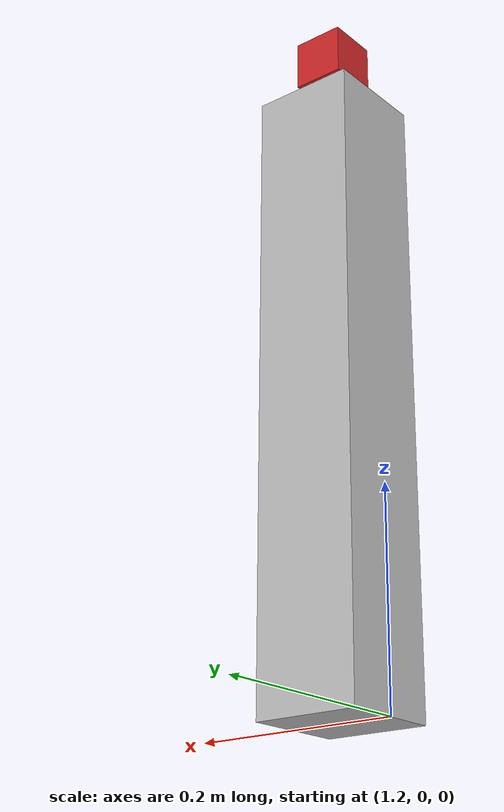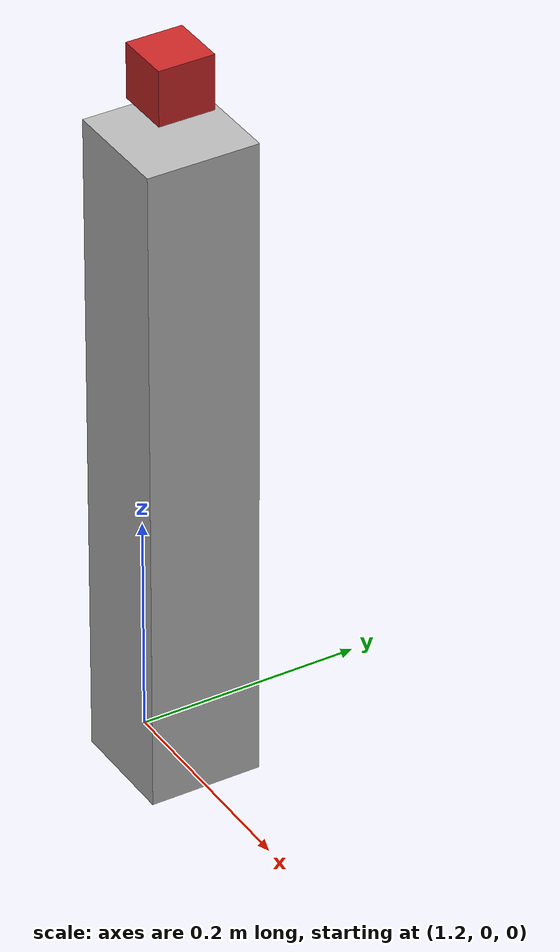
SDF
<?xml version='1.0'?>
<sdf version="1.4">
  <model name="camera_x">
    <pose>1.25 0 0.3 0 0 3.141592654</pose>
    <static>true</static>
    <link name="stand-link">
      <collision name="stand-collision">
        <geometry>
          <box>
            <size>0.1 0.1 0.6</size>
          </box>
        </geometry>
      </collision>

      <visual name="stand-visual">
        <geometry>
          <box>
            <size>0.1 0.1 0.6</size>
          </box>
        </geometry>
      </visual>
    </link>
    <link name="camera-link">
      <pose>0 0 0.35 0 0 0</pose>
      <collision name="camera-collision">
        <geometry>
          <box>
            <size>0.05 0.05 0.05</size>
          </box>
        </geometry>
      </collision>

      <visual name="camera-visual">
        <geometry>
          <box>
            <size>0.05 0.05 0.05</size>
          </box>
        </geometry>
        <material>
          <script>
            <uri>file://media/materials/scripts/gazebo.material</uri>
            <name>Gazebo/Red</name>
          </script>
        </material>
      </visual>

      <sensor name='camera-sensor' type='camera'>
        <camera>
          <horizontal_fov>1.047</horizontal_fov>
          <image>
            <width>1920</width>
            <height>1080</height>
          </image>
          <clip>
            <near>0.2</near>
            <far>300</far>
          </clip>
        </camera>
        <always_on>1</always_on>
        <update_rate>30</update_rate>

        <plugin name="camera-x-controller" filename="libgazebo_ros_camera.so">
          <robotNamespace>/camera</robotNamespace>
          <alwaysOn>true</alwaysOn>
          <updateRate>30.0</updateRate>
          <cameraName>camera_x</cameraName>
          <imageTopicName>image_raw</imageTopicName>
        </plugin>

      </sensor>
    </link>

  </model>
</sdf>
